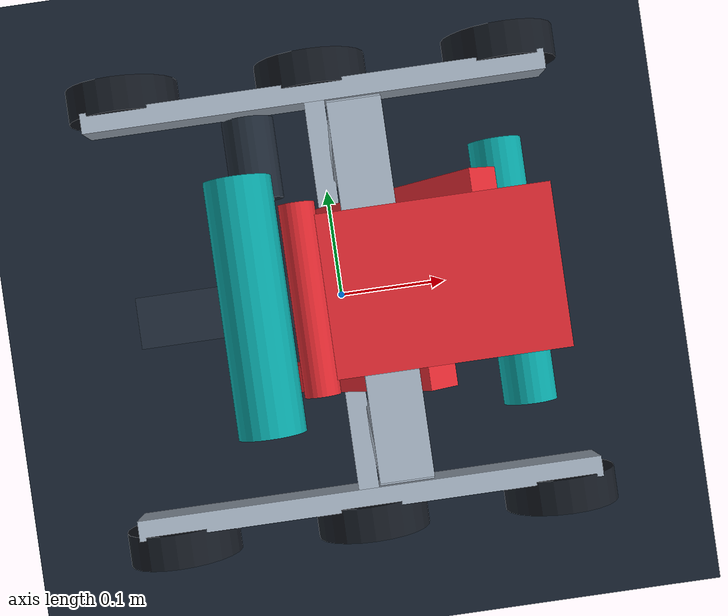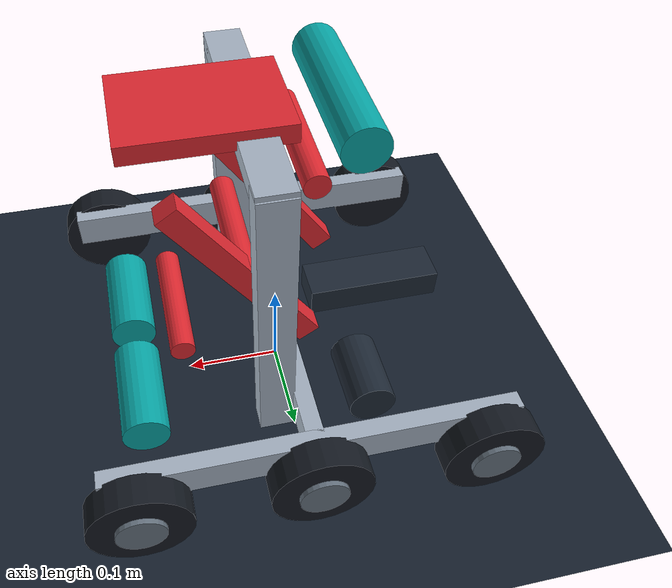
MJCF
<mujoco model="Walking-Beam Pin Stepper"><compiler angle="degree" /><visual><global offwidth="800" offheight="600" /><quality offsamples="0" /><headlight ambient=".45 .45 .45" /></visual><worldbody><light pos="0 -1 3" castshadow="false" /><geom type="plane" size="2 2 .1" rgba=".09 .13 .18 1" /><geom type="box" pos="0 -0.18 0.0758" size="0.205 0.009 0.018" euler="0 0 0" rgba=".65 .7 .76 1" contype="0" conaffinity="0" /><geom type="box" pos="0 0.18 0.0758" size="0.205 0.009 0.018" euler="0 0 0" rgba=".65 .7 .76 1" contype="0" conaffinity="0" /><geom type="box" pos="0 0 0.0758" size="0.009 0.18 0.018" euler="0 0 0" rgba=".65 .7 .76 1" contype="0" conaffinity="0" /><geom type="cylinder" pos="-0.1725 -0.20099999999999998 0.0508" size="0.0508 0.015" euler="90 0 0" rgba=".08 .1 .13 1" contype="0" conaffinity="0" /><geom type="cylinder" pos="-0.1725 -0.218 0.0508" size="0.024384 0.003" euler="90 0 0" rgba=".4 .45 .5 1" contype="0" conaffinity="0" /><geom type="cylinder" pos="0.0 -0.20099999999999998 0.0508" size="0.0508 0.015" euler="90 0 0" rgba=".08 .1 .13 1" contype="0" conaffinity="0" /><geom type="cylinder" pos="0.0 -0.218 0.0508" size="0.024384 0.003" euler="90 0 0" rgba=".4 .45 .5 1" contype="0" conaffinity="0" /><geom type="cylinder" pos="0.1725 -0.20099999999999998 0.0508" size="0.0508 0.015" euler="90 0 0" rgba=".08 .1 .13 1" contype="0" conaffinity="0" /><geom type="cylinder" pos="0.1725 -0.218 0.0508" size="0.024384 0.003" euler="90 0 0" rgba=".4 .45 .5 1" contype="0" conaffinity="0" /><geom type="cylinder" pos="-0.1725 0.20099999999999998 0.0508" size="0.0508 0.015" euler="90 0 0" rgba=".08 .1 .13 1" contype="0" conaffinity="0" /><geom type="cylinder" pos="-0.1725 0.218 0.0508" size="0.024384 0.003" euler="90 0 0" rgba=".4 .45 .5 1" contype="0" conaffinity="0" /><geom type="cylinder" pos="0.0 0.20099999999999998 0.0508" size="0.0508 0.015" euler="90 0 0" rgba=".08 .1 .13 1" contype="0" conaffinity="0" /><geom type="cylinder" pos="0.0 0.218 0.0508" size="0.024384 0.003" euler="90 0 0" rgba=".4 .45 .5 1" contype="0" conaffinity="0" /><geom type="cylinder" pos="0.1725 0.20099999999999998 0.0508" size="0.0508 0.015" euler="90 0 0" rgba=".08 .1 .13 1" contype="0" conaffinity="0" /><geom type="cylinder" pos="0.1725 0.218 0.0508" size="0.024384 0.003" euler="90 0 0" rgba=".4 .45 .5 1" contype="0" conaffinity="0" /><geom type="box" pos="-0.105 0.0 0.1008" size="0.07 0.022 0.015" euler="0 0 0" rgba=".12 .16 .21 1" contype="0" conaffinity="0" /><geom type="box" pos="0.025 0.112 0.19" size="0.0175 0.0125 0.15" euler="0.0 0.0 0.0" rgba=".65 .7 .76 1" contype="0" conaffinity="0" /><geom type="box" pos="0.025 -0.112 0.19" size="0.0175 0.0125 0.15" euler="0.0 0.0 0.0" rgba=".65 .7 .76 1" contype="0" conaffinity="0" /><geom type="box" pos="0.025 0.0 0.335" size="0.0175 0.1225 0.01" euler="0.0 0.0 0.0" rgba=".65 .7 .76 1" contype="0" conaffinity="0" /><geom type="box" pos="0.044 0.062 0.205" size="0.11 0.011 0.012" euler="0.0 -55.0 0.0" rgba=".87 .16 .19 1" contype="0" conaffinity="0" /><geom type="box" pos="-0.002 -0.062 0.205" size="0.11 0.011 0.012" euler="0.0 -55.0 0.0" rgba=".87 .16 .19 1" contype="0" conaffinity="0" /><geom type="cylinder" pos="0.108 0.0 0.112" size="0.0125 0.066" euler="90.0 0.0 0.0" rgba=".87 .16 .19 1" contype="0" conaffinity="0" /><geom type="cylinder" pos="0.042 0.0 0.205" size="0.0125 0.066" euler="90.0 0.0 0.0" rgba=".87 .16 .19 1" contype="0" conaffinity="0" /><geom type="cylinder" pos="-0.022 0.0 0.298" size="0.0125 0.066" euler="90.0 0.0 0.0" rgba=".87 .16 .19 1" contype="0" conaffinity="0" /><geom type="cylinder" pos="0.157 0.067 0.055" size="0.024 0.0525" euler="90.0 0.0 0.0" rgba=".03 .65 .65 1" contype="0" conaffinity="0" /><geom type="cylinder" pos="0.157 -0.067 0.055" size="0.024 0.0525" euler="90.0 0.0 0.0" rgba=".03 .65 .65 1" contype="0" conaffinity="0" /><geom type="cylinder" pos="-0.056 0.0 0.342" size="0.022 0.0825" euler="90.0 0.0 0.0" rgba=".03 .65 .65 1" contype="0" conaffinity="0" /><geom type="box" pos="0.065 0.0 0.345" size="0.075 0.0525 0.009" euler="0.0 0.0 0.0" rgba=".87 .16 .19 1" contype="0" conaffinity="0" /><geom type="cylinder" pos="-0.06 0.126 0.102" size="0.0225 0.035" euler="90.0 0.0 0.0" rgba=".12 .16 .21 1" contype="0" conaffinity="0" /></worldbody></mujoco>
